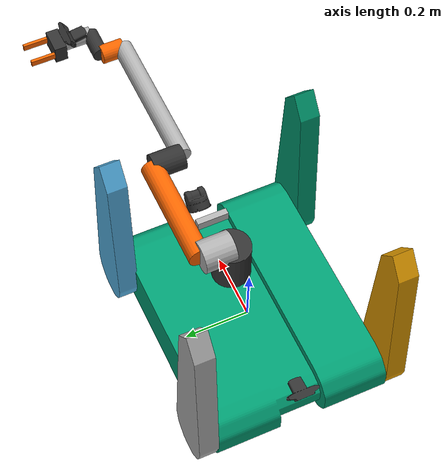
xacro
<?xml version="1.0"?>
<robot name="rescue_robot" xmlns:xacro="http://ros.org/wiki/xacro">

  <!-- ================= DIMENSIONES ================= -->
  <xacro:property name="H_BASE" value="0.15830"/>
  <xacro:property name="OFF_SHOULDER" value="0.10030"/>
  <xacro:property name="L_UPPER" value="0.35316"/>
  <xacro:property name="OFF_ELBOW" value="-0.10030"/>
  <xacro:property name="L_FORE" value="0.46600"/>
  <xacro:property name="L_WRIST1" value="0.07400"/>
  <xacro:property name="L_WRIST_END" value="0.09350"/>
  <xacro:property name="L_TOOL" value="0.28450"/>
  <xacro:property name="L_TOOL_END" value="${L_TOOL-L_WRIST_END}"/>

  <!-- ============== INITIAL POSITIONS ============== -->
  <xacro:property name="INIT_J1" value="0.0"/>
  <xacro:property name="INIT_J2" value="-2.86234"/>
  <xacro:property name="INIT_J3" value="2.86234"/>
  <xacro:property name="INIT_J4" value="-1.5708"/>
  <xacro:property name="INIT_J5" value="-1.5708"/>
  <xacro:property name="INIT_J6" value="0.0"/>
  <xacro:property name="INIT_FLIP" value="0.0"/>

  <!-- ================= MATERIALES ================= -->
  <material name="gray"><color rgba="0.7 0.7 0.7 1.0"/></material>
  <material name="orange"><color rgba="1.0 0.4 0.0 1.0"/></material>
  <material name="black"><color rgba="0.2 0.2 0.2 1.0"/></material>

  <!-- ================= BASE ROBOT ================= -->
  <link name="world">
    <visual>
      <geometry>
        <box size="0.001 0.001 0.001"/>
      </geometry>
    </visual>
  </link>

  <joint name="world_to_base" type="fixed">
    <parent link="world"/>
    <child link="base_link"/>
    <origin xyz="0 0 0" rpy="0 0 0"/>
  </joint>

  <link name="base_footprint">
    <visual>
      <geometry>
        <box size="0.001 0.001 0.001"/>
      </geometry>
    </visual>
  </link>

  <joint name="base_to_base_footprint" type="fixed">
    <parent link="base_link"/>
    <child link="base_footprint"/>
    <origin xyz="0 0 -0.09" rpy="0 0 0"/>
  </joint>

  <link name="base_link">
    <visual>
      <origin rpy="0 0 0" xyz="0 0.757 0"/>
      <geometry>
        <mesh filename="package://aesir_robot_description/meshes/base.stl" scale="0.001 0.001 0.001"/>
      </geometry>
    </visual>
    <collision>
      <origin rpy="0 0 0" xyz="0 0.757 0."/>
      <geometry>
        <mesh filename="package://aesir_robot_description/meshes/base.stl" scale="0.001 0.001 0.001"/>
      </geometry>
    </collision>
    <inertial>
      <origin rpy="0 0 0" xyz="0 0.757 0"/>
      <mass value="5.0"/>
      <inertia ixx="0.2" ixy="0" ixz="0" iyy="0.2" iyz="0" izz="0.2"/>
    </inertial>
  </link>

  <!-- ================= SENSORS ================= -->
  <link name="lidar_link">
    <visual>
      <origin rpy="0 0 0" xyz="0 0 0"/>
      <geometry>
        <mesh filename="package://aesir_robot_description/meshes/lidar.stl" scale="0.001 0.001 0.001"/>
      </geometry>
      <material name="black"/>
    </visual>
    <collision>
      <origin rpy="0 0 0" xyz="0 0 0"/>
      <geometry>
        <mesh filename="package://aesir_robot_description/meshes/lidar.stl" scale="0.001 0.001 0.001"/>
      </geometry>
    </collision>
    <inertial>
      <mass value="0.2"/>
      <inertia ixx="0.001" ixy="0" ixz="0" iyy="0.001" iyz="0" izz="0.001"/>
    </inertial>
  </link>

  <joint name="lidar_joint" type="fixed">
    <parent link="base_link"/>
    <child link="lidar_link"/>
    <origin xyz="0.357 0 0.09" rpy="0 0.785398 0"/>
  </joint>

  <link name="oakd_link">
    <visual>
      <geometry>
        <box size="0.02 0.1 0.03"/>
      </geometry>
      <material name="gray"/>
    </visual>
    <collision>
      <geometry>
        <box size="0.02 0.1 0.03"/>
      </geometry>
    </collision>
    <inertial>
      <mass value="0.1"/>
      <inertia ixx="0.0001" ixy="0" ixz="0" iyy="0.0001" iyz="0" izz="0.0001"/>
    </inertial>
  </link>

  <joint name="oakd_joint" type="fixed">
    <parent link="base_link"/>
    <child link="oakd_link"/>
    <origin xyz="0.257 0 0.15" rpy="0 0 0"/>
  </joint>

  <link name="arm_camera_link">
    <visual>
      <origin rpy="0 0 -1.5708" xyz="0 0.05 -0.2"/>
      <geometry>
        <mesh filename="package://aesir_robot_description/meshes/logitech_c920.stl" scale="0.001 0.001 0.001"/>
      </geometry>
      <material name="black"/>
    </visual>
    <collision>
      <origin rpy="0 0 -1.5708" xyz="0 0.05 -0.2"/>
      <geometry>
        <mesh filename="package://aesir_robot_description/meshes/logitech_c920.stl" scale="0.001 0.001 0.001"/>
      </geometry>
    </collision>
    <inertial>
      <mass value="0.05"/>
      <inertia ixx="0.00001" ixy="0" ixz="0" iyy="0.00001" iyz="0" izz="0.00001"/>
    </inertial>
  </link>

  <joint name="arm_camera_joint" type="fixed">
    <parent link="link_6"/>
    <child link="arm_camera_link"/>
    <origin xyz="0 -0.03 0.06" rpy="-0.174533 0 0"/>
  </joint>

  <link name="back_camera_link">
    <visual>
      <origin rpy="0 0 3.14159" xyz="0.04 -0.027 -0.19"/>
      <geometry>
        <mesh filename="package://aesir_robot_description/meshes/logitech_c920.stl" scale="0.001 0.001 0.001"/>
      </geometry>
      <material name="black"/>
    </visual>
    <collision>
      <origin rpy="0 0 3.14159" xyz="0.04 -0.027 -0.19"/>
      <geometry>
        <mesh filename="package://aesir_robot_description/meshes/logitech_c920.stl" scale="0.001 0.001 0.001"/>
      </geometry>
    </collision>
    <inertial>
      <mass value="0.05"/>
      <inertia ixx="0.00001" ixy="0" ixz="0" iyy="0.00001" iyz="0" izz="0.00001"/>
    </inertial>
  </link>

  <joint name="back_camera_joint" type="fixed">
    <parent link="base_link"/>
    <child link="back_camera_link"/>
    <origin xyz="-0.35 0 0.1" rpy="0 0 3.14159"/>
  </joint>

  <!-- ================= FLIPPER 1 ================= -->
  <link name="flipper_1_link">
    <visual>
      <origin rpy="0 0 0" xyz="0.3 1.06 0"/>
      <geometry><mesh filename="package://aesir_robot_description/meshes/flipper_1.stl" scale="0.001 0.001 0.001"/></geometry>
    </visual>
    <collision>
      <origin rpy="0 0 0" xyz="0.3 1.06 0"/>
      <geometry><mesh filename="package://aesir_robot_description/meshes/flipper_1.stl" scale="0.001 0.001 0.001"/></geometry>
    </collision>
    <inertial>
      <origin rpy="0 0 0" xyz="0.3 1.06 0"/>
      <mass value="0.8"/>
      <inertia ixx="0.01" ixy="0" ixz="0" iyy="0.02" iyz="0" izz="0.02"/>
    </inertial>
  </link>
  <joint name="flipper_1_joint" type="revolute">
    <parent link="base_link"/>
    <child link="flipper_1_link"/>
    <origin rpy="0 0 0" xyz="-0.3 0.3 0"/>
    <axis xyz="0 1 0"/>
    <limit lower="-3.14" upper="3.14" effort="150.0" velocity="3.14"/>
  </joint>

  <!-- ================= FLIPPER 2 ================= -->
  <link name="flipper_2_link">
    <visual>
      <origin rpy="0 0 0" xyz="0.3 0.45 0"/>
      <geometry><mesh filename="package://aesir_robot_description/meshes/flipper_2.stl" scale="0.001 0.001 0.001"/></geometry>
    </visual>
    <collision>
      <origin rpy="0 0 0" xyz="0.3 0.45 0"/>
      <geometry><mesh filename="package://aesir_robot_description/meshes/flipper_2.stl" scale="0.001 0.001 0.001"/></geometry>
    </collision>
    <inertial>
      <origin rpy="0 0 0" xyz="0.3 0.45 0"/>
      <mass value="0.8"/>
      <inertia ixx="0.01" ixy="0" ixz="0" iyy="0.02" iyz="0" izz="0.02"/>
    </inertial>
  </link>
  <joint name="flipper_2_joint" type="revolute">
    <parent link="base_link"/>
    <child link="flipper_2_link"/>
    <origin rpy="0 0 0" xyz="-0.3 -0.3 0"/>
    <axis xyz="0 1 0"/>
    <limit lower="-3.14" upper="3.14" effort="150.0" velocity="3.14"/>
  </joint>

  <!-- ================= FLIPPER 3 ================= -->
  <link name="flipper_3_link">
    <visual>
      <origin rpy="0 0 0" xyz="-0.3 1.06 0"/>
      <geometry><mesh filename="package://aesir_robot_description/meshes/flipper_3.stl" scale="0.001 0.001 0.001"/></geometry>
    </visual>
    <collision>
      <origin rpy="0 0 0" xyz="-0.3 1.06 0"/>
      <geometry><mesh filename="package://aesir_robot_description/meshes/flipper_3.stl" scale="0.001 0.001 0.001"/></geometry>
    </collision>
    <inertial>
      <origin rpy="0 0 0" xyz="-0.3 1.06 0"/>
      <mass value="0.8"/>
      <inertia ixx="0.01" ixy="0" ixz="0" iyy="0.02" iyz="0" izz="0.02"/>
    </inertial>
  </link>
  <joint name="flipper_3_joint" type="revolute">
    <parent link="base_link"/>
    <child link="flipper_3_link"/>
    <origin rpy="0 0 0" xyz="0.3 0.3 0"/>
    <axis xyz="0 1 0"/>
    <limit lower="-3.14" upper="3.14" effort="150.0" velocity="3.14"/>
  </joint>

  <!-- ================= FLIPPER 4 ================= -->
  <link name="flipper_4_link">
    <visual>
      <origin rpy="0 0 0" xyz="-0.3 0.45 0"/>
      <geometry><mesh filename="package://aesir_robot_description/meshes/flipper_4.stl" scale="0.001 0.001 0.001"/></geometry>
    </visual>
    <collision>
      <origin rpy="0 0 0" xyz="-0.3 0.45 0"/>
      <geometry><mesh filename="package://aesir_robot_description/meshes/flipper_4.stl" scale="0.001 0.001 0.001"/></geometry>
    </collision>
    <inertial>
      <origin rpy="0 0 0" xyz="-0.3 0.45 0"/>
      <mass value="0.8"/>
      <inertia ixx="0.01" ixy="0" ixz="0" iyy="0.02" iyz="0" izz="0.02"/>
    </inertial>
  </link>
  <joint name="flipper_4_joint" type="revolute">
    <parent link="base_link"/>
    <child link="flipper_4_link"/>
    <origin rpy="0 0 0" xyz="0.3 -0.3 0"/>
    <axis xyz="0 1 0"/>
    <limit lower="-3.14" upper="3.14" effort="150.0" velocity="3.14"/>
  </joint>

  <!-- ================= BASE ARM ================= -->
  <joint name="arm_mount_joint" type="fixed">
    <parent link="base_link"/>
    <child link="arm_base_link"/>
    <origin xyz="0.12 0 0.04" rpy="0 0 0"/>
  </joint>

  <link name="arm_base_link">
    <visual>
      <origin xyz="0 0 ${H_BASE/2}" rpy="0 0 0"/>
      <geometry><cylinder radius="0.06" length="${H_BASE}"/></geometry>
      <material name="black"/>
    </visual>
    <collision>
      <origin xyz="0 0 ${H_BASE/2}" rpy="0 0 0"/>
      <geometry><cylinder radius="0.06" length="${H_BASE}"/></geometry>
    </collision>
  </link>

  <!-- ================= JOINT 1 ================= -->
  <joint name="joint_1" type="revolute">
    <parent link="arm_base_link"/>
    <child link="link_1"/>
    <origin xyz="0 0 ${H_BASE}" rpy="0 0 0"/>
    <axis xyz="0 0 1"/>
    <limit lower="-3.14" upper="3.14" effort="150.0" velocity="3.14"/>
  </joint>

  <link name="link_1">
    <visual>
      <origin xyz="0 ${OFF_SHOULDER/2} 0" rpy="${pi/2} 0 0"/>
      <geometry><cylinder radius="0.05" length="${OFF_SHOULDER}"/></geometry>
      <material name="gray"/>
    </visual>
    <collision>
      <origin xyz="0 ${OFF_SHOULDER/2} 0" rpy="${pi/2} 0 0"/>
      <geometry><cylinder radius="0.05" length="${OFF_SHOULDER}"/></geometry>
    </collision>
    <inertial>
      <origin xyz="0 0 0" rpy="0 0 0"/>
      <mass value="1.5"/>
      <inertia ixx="0.01" ixy="0" ixz="0"
              iyy="0.01" iyz="0" izz="0.005"/>
    </inertial>
  </link>

  <!-- ================= JOINT 2 ================= -->
  <joint name="joint_2" type="revolute">
    <parent link="link_1"/>
    <child link="link_2"/>
    <origin xyz="0 ${OFF_SHOULDER} 0" rpy="0 0 0"/>
    <axis xyz="0 1 0"/>
    <limit lower="-3.14" upper="3.14" effort="150.0" velocity="3.14"/>
  </joint>

  <link name="link_2">
    <visual>
      <origin xyz="${L_UPPER/2} 0 0" rpy="0 ${pi/2} 0"/>
      <geometry><cylinder radius="0.035" length="${L_UPPER}"/></geometry>
      <material name="orange"/>
    </visual>
    <collision>
      <origin xyz="${L_UPPER/2} 0 0" rpy="0 ${pi/2} 0"/>
      <geometry><cylinder radius="0.035" length="${L_UPPER}"/></geometry>
    </collision>
    <visual>
      <origin xyz="${L_UPPER} ${OFF_ELBOW/2} 0" rpy="${pi/2} 0 0"/>
      <geometry><cylinder radius="0.04" length="${-OFF_ELBOW}"/></geometry>
      <material name="black"/>
    </visual>
    <collision>
      <origin xyz="${L_UPPER} ${OFF_ELBOW/2} 0" rpy="${pi/2} 0 0"/>
      <geometry><cylinder radius="0.04" length="${-OFF_ELBOW}"/></geometry>
    </collision>
    <inertial>
      <origin xyz="0 0 0" rpy="0 0 0"/>
      <mass value="1.5"/>
      <inertia ixx="0.01" ixy="0" ixz="0"
              iyy="0.01" iyz="0" izz="0.005"/>
    </inertial>
  </link>

  <!-- ================= JOINT 3 ================= -->
  <joint name="joint_3" type="revolute">
    <parent link="link_2"/>
    <child link="link_3"/>
    <origin xyz="${L_UPPER} ${OFF_ELBOW} 0" rpy="0 0 0"/>
    <axis xyz="0 1 0"/>
    <limit lower="-3.14" upper="3.14" effort="150.0" velocity="3.14"/>
  </joint>

  <link name="link_3">
    <visual>
      <origin xyz="${L_FORE/2} 0 0" rpy="0 ${pi/2} 0"/>
      <geometry><cylinder radius="0.03" length="${L_FORE}"/></geometry>
      <material name="gray"/>
    </visual>
    <collision>
      <origin xyz="${L_FORE/2} 0 0" rpy="0 ${pi/2} 0"/>
      <geometry><cylinder radius="0.03" length="${L_FORE}"/></geometry>
    </collision>
    <visual>
      <origin xyz="${L_FORE} ${L_WRIST1/2} 0" rpy="${pi/2} 0 0"/>
      <geometry><cylinder radius="0.03" length="${L_WRIST1}"/></geometry>
      <material name="orange"/>
    </visual>
    <collision>
      <origin xyz="${L_FORE} ${L_WRIST1/2} 0" rpy="${pi/2} 0 0"/>
      <geometry><cylinder radius="0.03" length="${L_WRIST1}"/></geometry>
    </collision>
    <inertial>
      <origin xyz="0 0 0" rpy="0 0 0"/>
      <mass value="1.5"/>
      <inertia ixx="0.01" ixy="0" ixz="0"
              iyy="0.01" iyz="0" izz="0.005"/>
    </inertial>
  </link>

  <!-- ================= JOINT 4 ================= -->
  <joint name="joint_4" type="revolute">
    <parent link="link_3"/>
    <child link="link_4"/>
    <origin xyz="${L_FORE} ${L_WRIST1} 0" rpy="0 0 0"/>
    <axis xyz="0 1 0"/>
    <limit lower="-3.14" upper="3.14" effort="50.0" velocity="3.14"/>
  </joint>

  <link name="link_4">
    <visual>
      <origin xyz="${L_WRIST_END/2} 0 0" rpy="0 ${pi/2} 0"/>
      <geometry><cylinder radius="0.025" length="${L_WRIST_END}"/></geometry>
      <material name="black"/>
    </visual>
    <collision>
      <origin xyz="${L_WRIST_END/2} 0 0" rpy="0 ${pi/2} 0"/>
      <geometry><cylinder radius="0.025" length="${L_WRIST_END}"/></geometry>
    </collision>
    <inertial>
      <origin xyz="0 0 0" rpy="0 0 0"/>
      <mass value="1.5"/>
      <inertia ixx="0.01" ixy="0" ixz="0"
              iyy="0.01" iyz="0" izz="0.005"/>
    </inertial>
  </link>

  <!-- ================= JOINT 5 ================= -->
  <joint name="joint_5" type="revolute">
    <parent link="link_4"/>
    <child link="link_5"/>
    <origin xyz="${L_WRIST_END} 0 0" rpy="0 0 0"/>
    <axis xyz="1 0 0"/>
    <limit lower="-3.14" upper="3.14" effort="50.0" velocity="3.14"/>
  </joint>

  <link name="link_5">
    <visual>
      <origin xyz="0 ${L_WRIST_END/2} 0" rpy="${pi/2} 0 0"/>
      <geometry><cylinder radius="0.025" length="${L_WRIST_END}"/></geometry>
      <material name="gray"/>
    </visual>
    <collision>
      <origin xyz="0 ${L_WRIST_END/2} 0" rpy="${pi/2} 0 0"/>
      <geometry><cylinder radius="0.025" length="${L_WRIST_END}"/></geometry>
    </collision>
    <inertial>
      <origin xyz="0 0 0" rpy="0 0 0"/>
      <mass value="1.5"/>
      <inertia ixx="0.01" ixy="0" ixz="0"
              iyy="0.01" iyz="0" izz="0.005"/>
    </inertial>
  </link>

  <!-- ================= JOINT 6 ================= -->
  <joint name="joint_6" type="revolute">
    <parent link="link_5"/>
    <child link="link_6"/>
    <origin xyz="0 ${L_WRIST_END} 0" rpy="0 0 0"/>
    <axis xyz="0 1 0"/>
    <limit lower="-3.14" upper="3.14" effort="50.0" velocity="3.14"/>
  </joint>

  <link name="link_6">
    <visual>
      <origin xyz="0 0 0" rpy="${-pi/2} 0 0"/>
      <geometry><cylinder radius="0.01" length="0"/></geometry>
      <material name="orange"/>
    </visual>
    <collision>
      <origin xyz="0 0 0" rpy="${-pi/2} 0 0"/>
      <geometry><cylinder radius="0.01" length="0"/></geometry>
    </collision>
    <inertial>
      <origin xyz="0 0 0" rpy="0 0 0"/>
      <mass value="1.5"/>
      <inertia ixx="0.01" ixy="0" ixz="0"
              iyy="0.01" iyz="0" izz="0.005"/>
    </inertial>
  </link>

    <!-- ================= GRIPPER ================= -->

  <link name="gripper_base_link">
    <visual>
      <origin xyz="0 0.02 0" rpy="0 0 0"/>
      <geometry>
        <box size="0.08 0.04 0.06"/>
      </geometry>
      <material name="black"/>
    </visual>
    <collision>
      <origin xyz="0 0.02 0" rpy="0 0 0"/>
      <geometry>
        <box size="0.08 0.04 0.06"/>
      </geometry>
    </collision>
    <inertial>
      <mass value="0.3"/>
      <inertia ixx="0.001" ixy="0" ixz="0" iyy="0.001" iyz="0" izz="0.001"/>
    </inertial>
  </link>

  <joint name="gripper_mount_joint" type="fixed">
    <parent link="link_6"/>
    <child link="gripper_base_link"/>
    <origin xyz="0 0 0" rpy="0 0 0"/>
  </joint>

  <link name="left_finger_link">
    <visual>
      <origin xyz="0 0.04 0" rpy="0 0 0"/>
      <geometry>
        <box size="0.01 0.08 0.02"/>
      </geometry>
      <material name="orange"/>
    </visual>
    <collision>
      <origin xyz="0 0.04 0" rpy="0 0 0"/>
      <geometry>
        <box size="0.01 0.08 0.02"/>
      </geometry>
    </collision>
    <inertial>
      <mass value="0.05"/>
      <inertia ixx="0.0001" ixy="0" ixz="0" iyy="0.0001" iyz="0" izz="0.0001"/>
    </inertial>
  </link>

  <joint name="left_finger_joint" type="prismatic">
    <parent link="gripper_base_link"/>
    <child link="left_finger_link"/>
    <origin xyz="-0.035 0.04 0" rpy="0 0 0"/>
    <axis xyz="1 0 0"/>
    <limit lower="0" upper="0.03" effort="50.0" velocity="0.5"/>
  </joint>

  <link name="right_finger_link">
    <visual>
      <origin xyz="0 0.04 0" rpy="0 0 0"/>
      <geometry>
        <box size="0.01 0.08 0.02"/>
      </geometry>
      <material name="orange"/>
    </visual>
    <collision>
      <origin xyz="0 0.04 0" rpy="0 0 0"/>
      <geometry>
        <box size="0.01 0.08 0.02"/>
      </geometry>
    </collision>
    <inertial>
      <mass value="0.05"/>
      <inertia ixx="0.0001" ixy="0" ixz="0" iyy="0.0001" iyz="0" izz="0.0001"/>
    </inertial>
  </link>

  <joint name="right_finger_joint" type="prismatic">
    <parent link="gripper_base_link"/>
    <child link="right_finger_link"/>
    <origin xyz="0.035 0.04 0" rpy="0 0 0"/>
    <axis xyz="-1 0 0"/>
    <limit lower="0" upper="0.03" effort="50.0" velocity="0.5"/>
  </joint>

</robot>
